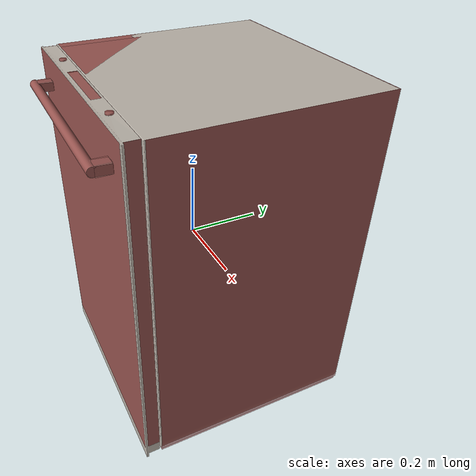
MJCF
<?xml version='1.0' encoding='UTF-8'?>
<mujoco model="model">
  <option timestep="0.002" gravity="0.0 0.0 -9.81"/>
  <compiler angle="radian"/>
  <asset>
    <mesh file="visuals/button_lock.obj" name="button_lock_vis"/>
    <mesh file="visuals/button_power.obj" name="button_power_vis"/>
    <mesh file="visuals/Body001.obj" name="Body001_vis"/>
    <mesh file="visuals/door.obj" name="door_vis"/>
    <mesh file="visuals/rack0.obj" name="rack0_vis"/>
    <mesh file="visuals/rack1.obj" name="rack1_vis"/>
    <texture file="visuals/T_BC001.png" name="Body001_material" type="2d"/>
    <material name="Body001_material" rgba="1 1 1 1.0" texture="Body001_material" shininess="0.1" specular="6"/>
    <texture file="visuals/T_BC001.png" name="door_material" type="2d"/>
    <material name="door_material" rgba="1 1 1 1.0" texture="door_material" shininess="0.1" specular="6"/>
    <texture file="visuals/T_BC001.png" name="button_lock_material" type="2d"/>
    <material name="button_lock_material" rgba="1 1 1 1.0" texture="button_lock_material" shininess="0.1" specular="6"/>
    <texture file="visuals/T_BC001.png" name="button_power_material" type="2d"/>
    <material name="button_power_material" rgba="1 1 1 1.0" texture="button_power_material" shininess="0.1" specular="6"/>
    <texture file="visuals/T_BC001.png" name="rack0_material" type="2d"/>
    <material name="rack0_material" rgba="1 1 1 1.0" texture="rack0_material" shininess="0.1" specular="6"/>
    <texture file="visuals/T_BC001.png" name="rack1_material" type="2d"/>
    <material name="rack1_material" rgba="1 1 1 1.0" texture="rack1_material" shininess="0.1" specular="6"/>
  </asset>
  <default>
    <default class="visual">
      <geom conaffinity="0" contype="0" group="1" type="mesh"/>
    </default>
    <default class="collision">
      <geom group="0" rgba="0.5 0 0 0.5"/>
    </default>
    <default class="spawn">
      <geom group="0" rgba="1 1 1 0.5" contype="0" conaffinity="0"/>
      <site group="0" rgba="1 1 1 0.5"/>
    </default>
    <default class="region">
      <geom group="1" conaffinity="0" contype="0" rgba="0 1 0 0"/>
    </default>
  </default>
  <worldbody>
    <body>
      <body name="object">
        <geom mesh="Body001_vis" type="mesh" solimp="0.998 0.998 0.001" solref="0.001 1" friction="0.95 0.3 0.1" class="visual" material="Body001_material"/>
        <geom class="collision" type="box" pos="0.00155940 0.03263054 0.46358112" size="0.29325568675994873 0.2784905433654785 0.01083672046661377" quat="1.0 0.0 0.0 0.0"/>
        <geom class="collision" type="box" pos="0.30845612 0.04954802 0.00629329" size="0.013749126344919205 0.2954080104827881 0.46812450885772705" quat="1.0 0.0 0.0 0.0"/>
        <geom class="collision" type="box" pos="-0.30654550 0.04954801 0.00629329" size="0.015659794211387634 0.2954079508781433 0.46812450885772705" quat="1.0 0.0 0.0 0.0"/>
        <geom class="collision" type="box" pos="0.00155942 0.32865322 0.00629329" size="0.29325568675994873 0.016302794218063354 0.46812450885772705" quat="1.0 0.0 0.0 0.0"/>
        <geom class="collision" type="box" pos="-0.00038596 0.04952301 -0.46985781" size="0.31707763671875 0.295432984828949 0.00802655890583992" quat="1.0 0.0 0.0 0.0"/>
        <geom class="collision" type="box" pos="0.28742397 0.04803570 0.19780329" size="0.007391098886728287 0.2839532494544983 0.0018048726487904787" quat="1.0 0.0 0.0 0.0"/>
        <geom class="collision" type="box" pos="-0.28673527 0.04803570 0.19780329" size="0.004961001221090555 0.2839532494544983 0.0018048726487904787" quat="1.0 0.0 0.0 0.0"/>
        <geom class="collision" type="box" pos="-0.28673527 0.04803570 -0.09955715" size="0.004961001221090555 0.2839532494544983 0.0018048763740807772" quat="1.0 0.0 0.0 0.0"/>
        <geom class="collision" type="box" pos="0.28742397 0.04803570 -0.09955715" size="0.007391098886728287 0.2839532494544983 0.0018048763740807772" quat="1.0 0.0 0.0 0.0"/>
        <body name="door">
          <joint axis="1.0 0.0 0.0" pos="-0.00171831 -0.29211199619594097 -0.4435629010736084" limited="true" name="door_joint" range="0.0 0.6035987755982988" type="hinge" damping="1" frictionloss="10" armature="1" stiffness="2"/>
          <geom mesh="door_vis" type="mesh" solimp="0.998 0.998 0.001" solref="0.001 1" friction="0.95 0.3 0.1" class="visual" material="door_material"/>
          <geom class="collision" type="box" pos="-0.00171831 -0.27046903 0.01473459" size="0.31452664732933044 0.02164296619594097 0.4582974910736084" quat="1.0 0.0 0.0 0.0" name="door_main"/>
          <geom class="collision" type="box" pos="0.24632083 -0.31011658 0.39872193" size="0.012813650071620941 0.019381284713745117 0.0163764376193285" quat="0.7309410572052002 0.0 0.6824405789375305 0.0"/>
          <geom class="collision" type="box" pos="-0.23809594 -0.31011658 0.39885226" size="0.012395946308970451 0.019381269812583923 0.01675279811024666" quat="0.7309410572052002 0.0 0.6824405789375305 0.0"/>
          <geom class="collision" type="cylinder" pos="0.00388840 -0.33332097 0.39996758" size="0.012235971167683601 0.2582305371761322" quat="0.7071068286895752 1.2101618374060763e-08 0.7071067094802856 -1.2101615709525504e-08" name="door_handle_main"/>
          <body name="button_lock">
            <joint axis="0.0 0.0 -1.0" pos="-0.18298566 -0.26662981 0.47530904" limited="true" name="button_lock_joint" range="0.0 0.002" type="slide" damping="1" frictionloss="1" armature=".01" springref="-1" stiffness="4"/>
            <geom mesh="button_lock_vis" type="mesh" solimp="0.998 0.998 0.001" solref="0.001 1" friction="0.95 0.3 0.1" class="visual" material="button_lock_material"/>
            <geom class="collision" type="cylinder" pos="-0.18283316 -0.26663026 0.47586274" size="0.009277576580643654 0.0020216035190969706" quat="0.7071067094802856 0.0 0.0 -0.7071068286895752"/>
          </body>
          <body name="button_power">
            <joint axis="0.0 0.0 -1.0" pos="0.18145567 -0.26662990 0.47530901" limited="true" name="button_power_joint" range="0.0 0.002" type="slide" damping="1" frictionloss="1" armature=".01" springref="-1" stiffness="4"/>
            <geom mesh="button_power_vis" type="mesh" solimp="0.998 0.998 0.001" solref="0.001 1" friction="0.95 0.3 0.1" class="visual" material="button_power_material"/>
            <geom class="collision" type="cylinder" pos="0.18147971 -0.26663026 0.47586274" size="0.009277576580643654 0.0020216035190969706" quat="0.7071067094802856 0.0 0.0 -0.7071068286895752"/>
          </body>
        </body>
        <body name="rack0">
          <geom class="region" name="reg_rack0" type="box" pos="-0.0031793899999999903 0.052330484999999996 -0.05526989000000001" size="0.25211372 0.244200315 0.12110277"/>
          <joint axis="0.0 -1.0 0.0" pos="-0.00163518 0.05106521 -0.15279360" limited="true" name="rack0_joint" range="0.0 0.33" type="slide" damping="1" frictionloss="1" armature=".01" stiffness="0.05"/>
          <geom mesh="rack0_vis" type="mesh" solimp="0.998 0.998 0.001" solref="0.001 1" friction="0.95 0.3 0.1" class="visual" material="rack0_material"/>
          <geom class="collision" type="box" pos="0.05465550 0.05172771 -0.15919490" size="0.0019640550017356873 0.20299112796783447 0.026353538036346436" quat="1.0 0.0 0.0 0.0"/>
          <geom class="collision" type="box" pos="-0.04838342 0.05172771 -0.15919490" size="0.0019640550017356873 0.20299112796783447 0.026353538036346436" quat="1.0 0.0 0.0 0.0"/>
          <geom class="collision" type="box" pos="-0.13689145 0.05172771 -0.15919490" size="0.0019640550017356873 0.20299112796783447 0.026353538036346436" quat="1.0 0.0 0.0 0.0"/>
          <geom class="collision" type="box" pos="-0.22374275 0.05172771 -0.15919490" size="0.0019640550017356873 0.20299112796783447 0.026353538036346436" quat="1.0 0.0 0.0 0.0"/>
          <geom class="collision" type="box" pos="-0.00317875 0.05088568 -0.20264810" size="0.2567950189113617 0.2505642771720886 0.021035809069871902" quat="1.0 0.0 0.0 0.0"/>
          <geom class="collision" type="box" pos="-0.27093369 0.05203331 -0.14494359" size="0.010546132922172546 0.24883143603801727 0.05987343564629555" quat="1.0 0.0 0.0 0.0"/>
          <geom class="collision" type="box" pos="0.26400656 0.05203331 -0.14494359" size="0.010546132922172546 0.24883143603801727 0.05987343564629555" quat="1.0 0.0 0.0 0.0"/>
          <geom class="collision" type="box" pos="-0.00012753 -0.20295436 -0.15362094" size="0.27703744173049927 0.005895007401704788 0.07006293535232544" quat="1.0 0.0 0.0 0.0"/>
          <geom class="collision" type="box" pos="0.21544147 0.05172771 -0.15919490" size="0.0019640550017356873 0.20299112796783447 0.026353538036346436" quat="1.0 0.0 0.0 0.0"/>
          <geom class="collision" type="box" pos="-0.00012753 0.30668143 -0.15362094" size="0.27703744173049927 0.005895007401704788 0.07006293535232544" quat="1.0 0.0 0.0 0.0"/>
        </body>
        <body name="rack1">
          <geom class="region" name="reg_rack1" type="box" pos="-0.0031793899999999903 0.052330484999999996 0.282769325" size="0.25211372 0.244200315 0.165168775"/>
          <joint axis="0.0 -1.0 0.0" pos="-0.00163518 0.05106521 0.14311844" limited="true" name="rack1_joint" range="0.0 0.33" type="slide" damping="1" frictionloss="1" armature=".01" stiffness="0.05"/>
          <geom mesh="rack1_vis" type="mesh" solimp="0.998 0.998 0.001" solref="0.001 1" friction="0.95 0.3 0.1" class="visual" material="rack1_material"/>
          <geom class="collision" type="box" pos="-0.00012753 0.30668143 0.14050074" size="0.27703744173049927 0.005895007401704788 0.07006293535232544" quat="1.0 0.0 0.0 0.0"/>
          <geom class="collision" type="box" pos="-0.00012753 -0.20295436 0.14050074" size="0.27703744173049927 0.005895007401704788 0.07006293535232544" quat="1.0 0.0 0.0 0.0"/>
          <geom class="collision" type="box" pos="0.26400656 0.05203331 0.14917809" size="0.010546132922172546 0.24883143603801727 0.05987343564629555" quat="1.0 0.0 0.0 0.0"/>
          <geom class="collision" type="box" pos="-0.27093369 0.05203331 0.14917809" size="0.010546132922172546 0.24883143603801727 0.05987343564629555" quat="1.0 0.0 0.0 0.0"/>
          <geom class="collision" type="box" pos="-0.00317875 0.05088568 0.09147357" size="0.2567950189113617 0.2505642771720886 0.021035809069871902" quat="1.0 0.0 0.0 0.0"/>
          <geom class="collision" type="box" pos="-0.22374275 0.05172771 0.13492678" size="0.0019640550017356873 0.20299112796783447 0.026353538036346436" quat="1.0 0.0 0.0 0.0"/>
          <geom class="collision" type="box" pos="-0.13689145 0.05172771 0.13492678" size="0.0019640550017356873 0.20299112796783447 0.026353538036346436" quat="1.0 0.0 0.0 0.0"/>
          <geom class="collision" type="box" pos="-0.04838342 0.05172771 0.13492678" size="0.0019640550017356873 0.20299112796783447 0.026353538036346436" quat="1.0 0.0 0.0 0.0"/>
          <geom class="collision" type="box" pos="0.05465550 0.05172771 0.13492678" size="0.0019640550017356873 0.20299112796783447 0.026353538036346436" quat="1.0 0.0 0.0 0.0"/>
          <geom class="collision" type="box" pos="0.21544147 0.05172771 0.13492678" size="0.0019640550017356873 0.20299112796783447 0.026353538036346436" quat="1.0 0.0 0.0 0.0"/>
        </body>
        <geom class="region" name="reg_int" type="box" pos="-0.001029329999999995 0.044862335 -0.004563999999999985" size="0.27594703 0.26291994500000004 0.4525021"/>
        <geom class="region" name="reg_main" type="box" pos="0.0 0.026422 0.0" size="0.32320525 0.31953405 0.47888435"/>
      </body>
    </body>
  </worldbody>
  <actuator>
    <motor name="door_joint_actuator" joint="door_joint" gear="50"/>
    <motor name="rack0_joint_actuator" joint="rack0_joint" gear="50"/>
    <motor name="rack1_joint_actuator" joint="rack1_joint" gear="50"/>
    <motor name="button_lock_joint_actuator" joint="button_lock_joint" gear="0.5"/>
    <motor name="button_power_joint_actuator" joint="button_power_joint" gear="0.5"/>
  </actuator>
</mujoco>
